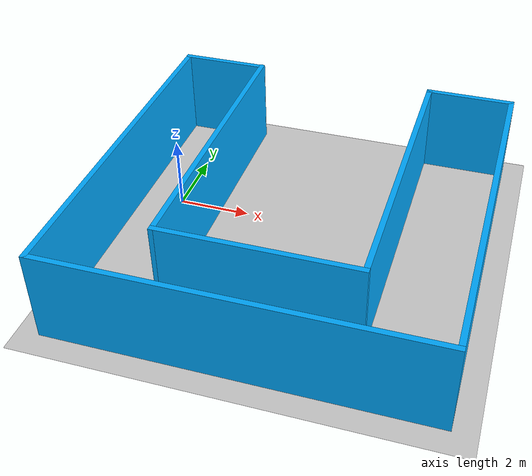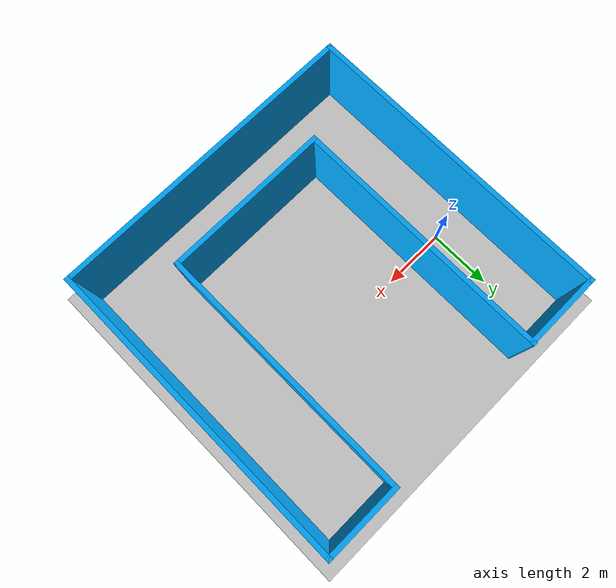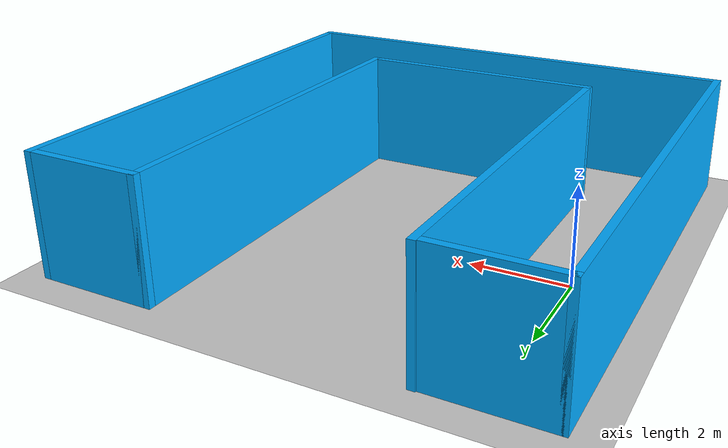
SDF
<sdf version="1.6">
 <world name="default">
  <light name="sun" type="directional">
   <pose>0 0 10 0 -0 0</pose>
   <diffuse>0.8 0.8 0.8 1</diffuse>
   <specular>0.1 0.1 0.1 1</specular>
   <attenuation>
    <range>1000</range>
    <constant>0.9</constant>
    <linear>0.01</linear>
    <quadratic>0.001</quadratic>
   </attenuation>
   <direction>-0.5 0.5 -1</direction>
  </light>
  <model name="ground_plane">
   <static>1</static>
   <link name="link">
    <collision name="collision">
     <geometry><plane><normal>0 0 1</normal><size>100 100</size></plane></geometry>
     <surface><friction><ode><mu>100</mu><mu2>50</mu2></ode></friction></surface>
    </collision>
    <visual name="visual">
     <cast_shadows>0</cast_shadows>
     <geometry><plane><normal>0 0 1</normal><size>100 100</size></plane></geometry>
     <material>
      <script><uri>file://media/materials/scripts/gazebo.material</uri><name>Gazebo/Grey</name></script>
     </material>
    </visual>
   </link>
  </model>
  <gravity>0 0 -9.8</gravity>
  <magnetic_field>6e-06 2.3e-05 -4.2e-05</magnetic_field>
  <atmosphere type="adiabatic"/>
  <physics name="default_physics" default="0" type="ode">
   <max_step_size>0.001</max_step_size>
   <real_time_factor>1</real_time_factor>
   <real_time_update_rate>1000</real_time_update_rate>
  </physics>
  <scene><ambient>0.4 0.4 0.4 1</ambient><background>0.7 0.7 0.7 1</background><shadows>1</shadows></scene>
  <spherical_coordinates>
   <surface_model>EARTH_WGS84</surface_model>
   <latitude_deg>0</latitude_deg>
   <longitude_deg>0</longitude_deg>
   <elevation>0</elevation>
   <heading_deg>0</heading_deg>
  </spherical_coordinates>
  <model name="U">
   <pose>3.719 -0.913433 0 0 -0 0</pose>
   <link name="Wall_10">
    <collision name="Wall_10_Collision">
     <geometry><box><size>5.29859 0.15 2.5</size></box></geometry>
     <pose>0 0 1.25 0 -0 0</pose>
    </collision>
    <visual name="Wall_10_Visual">
     <pose>0 0 1.25 0 -0 0</pose>
     <geometry><box><size>5.29859 0.15 2.5</size></box></geometry>
     <material>
      <script><uri>file://media/materials/scripts/gazebo.material</uri><name>Gazebo/Grey</name></script>
      <ambient>0 0.666667 1 1</ambient>
     </material>
    </visual>
    <pose>0.001 -3.20257 0 0 -0 3.14159</pose>
   </link>
   <link name="Wall_11">
    <collision name="Wall_11_Collision">
     <geometry><box><size>8.28913 0.15 2.5</size></box></geometry>
     <pose>0 0 1.25 0 -0 0</pose>
    </collision>
    <visual name="Wall_11_Visual">
     <pose>0 0 1.25 0 -0 0</pose>
     <geometry><box><size>8.28913 0.15 2.5</size></box></geometry>
     <material>
      <script><uri>file://media/materials/scripts/gazebo.material</uri><name>Gazebo/Grey</name></script>
      <ambient>0 0.666667 1 1</ambient>
     </material>
    </visual>
    <pose>-2.57322 0.866998 0 0 -0 1.57085</pose>
   </link>
   <link name="Wall_12">
    <collision name="Wall_12_Collision">
     <geometry><box><size>2.5 0.15 2.5</size></box></geometry>
     <pose>0 0 1.25 0 -0 0</pose>
    </collision>
    <visual name="Wall_12_Visual">
     <pose>0 0 1.25 0 -0 0</pose>
     <geometry><box><size>2.5 0.15 2.5</size></box></geometry>
     <material>
      <script><uri>file://media/materials/scripts/gazebo.material</uri><name>Gazebo/Grey</name></script>
      <ambient>0 0.666667 1 1</ambient>
     </material>
    </visual>
    <pose>-3.74844 4.91343 0 0 -0 3.14159</pose>
   </link>
   <link name="Wall_5">
    <collision name="Wall_5_Collision">
     <geometry><box><size>10 0.15 2.5</size></box></geometry>
     <pose>0 0 1.25 0 -0 0</pose>
    </collision>
    <visual name="Wall_5_Visual">
     <pose>0 0 1.25 0 -0 0</pose>
     <geometry><box><size>10 0.15 2.5</size></box></geometry>
     <material>
      <script><uri>file://media/materials/scripts/gazebo.material</uri><name>Gazebo/Grey</name></script>
      <ambient>0 0.666667 1 1</ambient>
     </material>
    </visual>
    <pose>-4.925 -0.011567 0 0 0 -1.5708</pose>
   </link>
   <link name="Wall_6">
    <collision name="Wall_6_Collision">
     <geometry><box><size>10 0.15 2.5</size></box></geometry>
     <pose>0 0 1.25 0 -0 0</pose>
    </collision>
    <visual name="Wall_6_Visual">
     <pose>0 0 1.25 0 -0 0</pose>
     <geometry><box><size>10 0.15 2.5</size></box></geometry>
     <material>
      <script><uri>file://media/materials/scripts/gazebo.material</uri><name>Gazebo/Grey</name></script>
      <ambient>0 0.666667 1 1</ambient>
     </material>
    </visual>
    <pose>0 -4.93657 0 0 -0 0</pose>
   </link>
   <link name="Wall_7">
    <collision name="Wall_7_Collision">
     <geometry><box><size>10 0.15 2.5</size></box></geometry>
     <pose>0 0 1.25 0 -0 0</pose>
    </collision>
    <visual name="Wall_7_Visual">
     <pose>0 0 1.25 0 -0 0</pose>
     <geometry><box><size>10 0.15 2.5</size></box></geometry>
     <material>
      <script><uri>file://media/materials/scripts/gazebo.material</uri><name>Gazebo/Grey</name></script>
      <ambient>0 0.666667 1 1</ambient>
     </material>
    </visual>
    <pose>4.925 -0.011567 0 0 -0 1.5708</pose>
   </link>
   <link name="Wall_8">
    <collision name="Wall_8_Collision">
     <geometry><box><size>2.5 0.15 2.5</size></box></geometry>
     <pose>0 0 1.25 0 -0 0</pose>
    </collision>
    <visual name="Wall_8_Visual">
     <pose>0 0 1.25 0 -0 0</pose>
     <geometry><box><size>2.5 0.15 2.5</size></box></geometry>
     <material>
      <script><uri>file://media/materials/scripts/gazebo.material</uri><name>Gazebo/Grey</name></script>
      <ambient>0 0.666667 1 1</ambient>
     </material>
    </visual>
    <pose>3.75 4.91343 0 0 -0 3.14159</pose>
   </link>
   <link name="Wall_9">
    <collision name="Wall_9_Collision">
     <geometry><box><size>8.266 0.15 2.5</size></box></geometry>
     <pose>0 0 1.25 0 -0 0</pose>
    </collision>
    <visual name="Wall_9_Visual">
     <pose>0 0 1.25 0 -0 0</pose>
     <geometry><box><size>8.266 0.15 2.5</size></box></geometry>
     <material>
      <script><uri>file://media/materials/scripts/gazebo.material</uri><name>Gazebo/Grey</name></script>
      <ambient>0 0.666667 1 1</ambient>
     </material>
    </visual>
    <pose>2.575 0.855433 0 0 0 -1.5708</pose>
   </link>
   <static>1</static>
  </model>
 </world>
</sdf>
